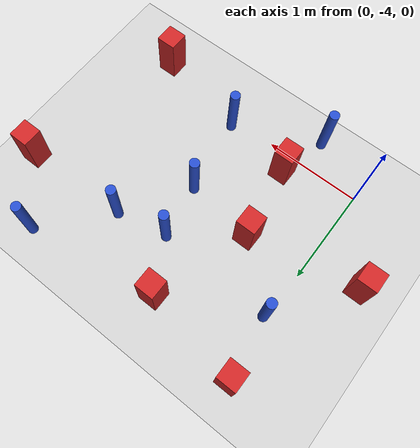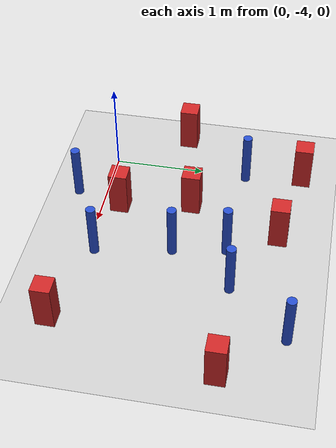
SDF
<sdf version="1.6">
 <world name="default">
  <model name="ground_plane">
   <static>1</static>
   <link name="link">
    <collision name="collision">
     <geometry><plane><normal>0 0 1</normal><size>100 100</size></plane></geometry>
     <surface><friction><ode><mu>100</mu><mu2>50</mu2></ode></friction></surface>
    </collision>
    <visual name="visual">
     <cast_shadows>0</cast_shadows>
     <geometry><plane><normal>0 0 1</normal><size>100 100</size></plane></geometry>
     <material>
      <ambient>1.0 1.0 1.0 1.0</ambient>
      <diffuse>0.8 0.8 0.8 1.0</diffuse>
      <specular>0.01 0.01 0.01 1.000000</specular>
     </material>
    </visual>
   </link>
  </model>
  <model name="pole_obstacle0">
   <static>true</static>
   <pose>1.45764528737 -3.91231881478 -9.47619616065e-06 5.49618799737e-07 2.36310414062e-07 -1.55090534798e-07</pose>
   <link name="link">
    <pose>0 0 0.3 0 -0 0</pose>
    <inertial>
     <mass>1</mass>
     <inertia><ixx>0.145833</ixx><ixy>0</ixy><ixz>0</ixz><iyy>0.145833</iyy><iyz>0</iyz><izz>0.125</izz></inertia>
    </inertial>
    <collision name="collision">
     <geometry><cylinder><radius>0.05</radius><length>.6</length></cylinder></geometry>
    </collision>
    <visual name="visual">
     <geometry><cylinder><radius>0.05</radius><length>.6</length></cylinder></geometry>
     <material>
      <script><name>Gazebo/Blue</name><uri>file://media/materials/scripts/gazebo.material</uri></script>
     </material>
    </visual>
   </link>
  </model>
  <model name="square_post_obstacle4">
   <static>true</static>
   <pose>-0.513113206835 -3.23635773973 -6.11067671241e-07 -5.50515727128e-06 -8.79689657224e-07 2.37013304536e-05</pose>
   <link name="link">
    <pose>0 0 0.25 0 -0 0</pose>
    <inertial>
     <mass>100</mass>
     <inertia>
      <ixx>0.166667</ixx>
      <ixy>0</ixy>
      <ixz>0</ixz>
      <iyy>0.166667</iyy>
      <iyz>0</iyz>
      <izz>0.166667</izz>
     </inertia>
    </inertial>
    <collision name="collision"><geometry><box><size>.2 .2 .5</size></box></geometry></collision>
    <visual name="visual">
     <geometry><box><size>.2 .2 .5</size></box></geometry>
     <material>
      <script><name>Gazebo/Red</name><uri>file://media/materials/scripts/gazebo.material</uri></script>
     </material>
    </visual>
   </link>
  </model>
  <model name="pole_obstacle8">
   <static>true</static>
   <pose>0.036647531542 -2.49097002467 -9.4761961606e-06 5.49618799729e-07 2.36310413998e-07 -1.55090534825e-07</pose>
   <link name="link">
    <pose>0 0 0.3 0 -0 0</pose>
    <inertial>
     <mass>1</mass>
     <inertia><ixx>0.145833</ixx><ixy>0</ixy><ixz>0</ixz><iyy>0.145833</iyy><iyz>0</iyz><izz>0.125</izz></inertia>
    </inertial>
    <collision name="collision">
     <geometry><cylinder><radius>0.05</radius><length>.6</length></cylinder></geometry>
    </collision>
    <visual name="visual">
     <geometry><cylinder><radius>0.05</radius><length>.6</length></cylinder></geometry>
     <material>
      <script><name>Gazebo/Blue</name><uri>file://media/materials/scripts/gazebo.material</uri></script>
     </material>
    </visual>
   </link>
  </model>
  <model name="square_post_obstacle7">
   <static>true</static>
   <pose>-0.0492457941668 -1.85533432549 -6.11067671241e-07 -5.50515727128e-06 -8.79689657224e-07 2.37013304536e-05</pose>
   <link name="link">
    <pose>0 0 0.25 0 -0 0</pose>
    <inertial>
     <mass>100</mass>
     <inertia>
      <ixx>0.166667</ixx>
      <ixy>0</ixy>
      <ixz>0</ixz>
      <iyy>0.166667</iyy>
      <iyz>0</iyz>
      <izz>0.166667</izz>
     </inertia>
    </inertial>
    <collision name="collision"><geometry><box><size>.2 .2 .5</size></box></geometry></collision>
    <visual name="visual">
     <geometry><box><size>.2 .2 .5</size></box></geometry>
     <material>
      <script><name>Gazebo/Red</name><uri>file://media/materials/scripts/gazebo.material</uri></script>
     </material>
    </visual>
   </link>
  </model>
  <model name="square_post_obstacle32">
   <static>true</static>
   <pose>0.944334524365 -2.0193535119 -6.11067671241e-07 -5.50515727128e-06 -8.79689657224e-07 2.37013304536e-05</pose>
   <link name="link">
    <pose>0 0 0.25 0 -0 0</pose>
    <inertial>
     <mass>100</mass>
     <inertia>
      <ixx>0.166667</ixx>
      <ixy>0</ixy>
      <ixz>0</ixz>
      <iyy>0.166667</iyy>
      <iyz>0</iyz>
      <izz>0.166667</izz>
     </inertia>
    </inertial>
    <collision name="collision"><geometry><box><size>.2 .2 .5</size></box></geometry></collision>
    <visual name="visual">
     <geometry><box><size>.2 .2 .5</size></box></geometry>
     <material>
      <script><name>Gazebo/Red</name><uri>file://media/materials/scripts/gazebo.material</uri></script>
     </material>
    </visual>
   </link>
  </model>
  <model name="pole_obstacle49">
   <static>true</static>
   <pose>1.22181753128 -2.53847772462 -9.47619616065e-06 5.49618799737e-07 2.36310414062e-07 -1.55090534798e-07</pose>
   <link name="link">
    <pose>0 0 0.3 0 -0 0</pose>
    <inertial>
     <mass>1</mass>
     <inertia><ixx>0.145833</ixx><ixy>0</ixy><ixz>0</ixz><iyy>0.145833</iyy><iyz>0</iyz><izz>0.125</izz></inertia>
    </inertial>
    <collision name="collision">
     <geometry><cylinder><radius>0.05</radius><length>.6</length></cylinder></geometry>
    </collision>
    <visual name="visual">
     <geometry><cylinder><radius>0.05</radius><length>.6</length></cylinder></geometry>
     <material>
      <script><name>Gazebo/Blue</name><uri>file://media/materials/scripts/gazebo.material</uri></script>
     </material>
    </visual>
   </link>
  </model>
  <model name="square_post_obstacle45">
   <static>true</static>
   <pose>0.733690018151 -3.7953399862 -6.11067671241e-07 -5.50515727128e-06 -8.79689657224e-07 2.37013304536e-05</pose>
   <link name="link">
    <pose>0 0 0.25 0 -0 0</pose>
    <inertial>
     <mass>100</mass>
     <inertia>
      <ixx>0.166667</ixx>
      <ixy>0</ixy>
      <ixz>0</ixz>
      <iyy>0.166667</iyy>
      <iyz>0</iyz>
      <izz>0.166667</izz>
     </inertia>
    </inertial>
    <collision name="collision"><geometry><box><size>.2 .2 .5</size></box></geometry></collision>
    <visual name="visual">
     <geometry><box><size>.2 .2 .5</size></box></geometry>
     <material>
      <script><name>Gazebo/Red</name><uri>file://media/materials/scripts/gazebo.material</uri></script>
     </material>
    </visual>
   </link>
  </model>
  <model name="pole_obstacle83">
   <static>true</static>
   <pose>2.29108792412 -1.79447740261 -9.47619616065e-06 5.49618799737e-07 2.36310414072e-07 -1.55090534793e-07</pose>
   <link name="link">
    <pose>0 0 0.3 0 -0 0</pose>
    <inertial>
     <mass>1</mass>
     <inertia><ixx>0.145833</ixx><ixy>0</ixy><ixz>0</ixz><iyy>0.145833</iyy><iyz>0</iyz><izz>0.125</izz></inertia>
    </inertial>
    <collision name="collision">
     <geometry><cylinder><radius>0.05</radius><length>.6</length></cylinder></geometry>
    </collision>
    <visual name="visual">
     <geometry><cylinder><radius>0.05</radius><length>.6</length></cylinder></geometry>
     <material>
      <script><name>Gazebo/Blue</name><uri>file://media/materials/scripts/gazebo.material</uri></script>
     </material>
    </visual>
   </link>
  </model>
  <model name="pole_obstacle108">
   <static>true</static>
   <pose>1.32068198017 -3.10183576846 -9.47619616065e-06 5.49618799737e-07 2.36310414062e-07 -1.55090534798e-07</pose>
   <link name="link">
    <pose>0 0 0.3 0 -0 0</pose>
    <inertial>
     <mass>1</mass>
     <inertia><ixx>0.145833</ixx><ixy>0</ixy><ixz>0</ixz><iyy>0.145833</iyy><iyz>0</iyz><izz>0.125</izz></inertia>
    </inertial>
    <collision name="collision">
     <geometry><cylinder><radius>0.05</radius><length>.6</length></cylinder></geometry>
    </collision>
    <visual name="visual">
     <geometry><cylinder><radius>0.05</radius><length>.6</length></cylinder></geometry>
     <material>
      <script><name>Gazebo/Blue</name><uri>file://media/materials/scripts/gazebo.material</uri></script>
     </material>
    </visual>
   </link>
  </model>
  <model name="pole_obstacle126">
   <static>true</static>
   <pose>0.591665066067 -4.31535992664 -9.47619616065e-06 5.49618799737e-07 2.36310414065e-07 -1.55090534796e-07</pose>
   <link name="link">
    <pose>0 0 0.3 0 -0 0</pose>
    <inertial>
     <mass>1</mass>
     <inertia><ixx>0.145833</ixx><ixy>0</ixy><ixz>0</ixz><iyy>0.145833</iyy><iyz>0</iyz><izz>0.125</izz></inertia>
    </inertial>
    <collision name="collision">
     <geometry><cylinder><radius>0.05</radius><length>.6</length></cylinder></geometry>
    </collision>
    <visual name="visual">
     <geometry><cylinder><radius>0.05</radius><length>.6</length></cylinder></geometry>
     <material>
      <script><name>Gazebo/Blue</name><uri>file://media/materials/scripts/gazebo.material</uri></script>
     </material>
    </visual>
   </link>
  </model>
  <model name="square_post_obstacle142">
   <static>true</static>
   <pose>0.606535032504 -3.0171237286 -6.11067671241e-07 -5.50515727128e-06 -8.79689657224e-07 2.37013304536e-05</pose>
   <link name="link">
    <pose>0 0 0.25 0 -0 0</pose>
    <inertial>
     <mass>100</mass>
     <inertia>
      <ixx>0.166667</ixx>
      <ixy>0</ixy>
      <ixz>0</ixz>
      <iyy>0.166667</iyy>
      <iyz>0</iyz>
      <izz>0.166667</izz>
     </inertia>
    </inertial>
    <collision name="collision"><geometry><box><size>.2 .2 .5</size></box></geometry></collision>
    <visual name="visual">
     <geometry><box><size>.2 .2 .5</size></box></geometry>
     <material>
      <script><name>Gazebo/Red</name><uri>file://media/materials/scripts/gazebo.material</uri></script>
     </material>
    </visual>
   </link>
  </model>
  <model name="pole_obstacle179">
   <static>true</static>
   <pose>1.74304431504 -2.42977251697 -9.47619616065e-06 5.49618799737e-07 2.36310414062e-07 -1.55090534798e-07</pose>
   <link name="link">
    <pose>0 0 0.3 0 -0 0</pose>
    <inertial>
     <mass>1</mass>
     <inertia><ixx>0.145833</ixx><ixy>0</ixy><ixz>0</ixz><iyy>0.145833</iyy><iyz>0</iyz><izz>0.125</izz></inertia>
    </inertial>
    <collision name="collision">
     <geometry><cylinder><radius>0.05</radius><length>.6</length></cylinder></geometry>
    </collision>
    <visual name="visual">
     <geometry><cylinder><radius>0.05</radius><length>.6</length></cylinder></geometry>
     <material>
      <script><name>Gazebo/Blue</name><uri>file://media/materials/scripts/gazebo.material</uri></script>
     </material>
    </visual>
   </link>
  </model>
  <model name="square_post_obstacle177">
   <static>true</static>
   <pose>2.42569512224 -4.12944971251 -6.11067671241e-07 -5.50515727128e-06 -8.79689657224e-07 2.37013304536e-05</pose>
   <link name="link">
    <pose>0 0 0.25 0 -0 0</pose>
    <inertial>
     <mass>100</mass>
     <inertia>
      <ixx>0.166667</ixx>
      <ixy>0</ixy>
      <ixz>0</ixz>
      <iyy>0.166667</iyy>
      <iyz>0</iyz>
      <izz>0.166667</izz>
     </inertia>
    </inertial>
    <collision name="collision"><geometry><box><size>.2 .2 .5</size></box></geometry></collision>
    <visual name="visual">
     <geometry><box><size>.2 .2 .5</size></box></geometry>
     <material>
      <script><name>Gazebo/Red</name><uri>file://media/materials/scripts/gazebo.material</uri></script>
     </material>
    </visual>
   </link>
  </model>
  <model name="square_post_obstacle230">
   <static>true</static>
   <pose>2.81615500526 -2.39496275745 -6.11067671241e-07 -5.50515727128e-06 -8.79689657224e-07 2.37013304536e-05</pose>
   <link name="link">
    <pose>0 0 0.25 0 -0 0</pose>
    <inertial>
     <mass>100</mass>
     <inertia>
      <ixx>0.166667</ixx>
      <ixy>0</ixy>
      <ixz>0</ixz>
      <iyy>0.166667</iyy>
      <iyz>0</iyz>
      <izz>0.166667</izz>
     </inertia>
    </inertial>
    <collision name="collision"><geometry><box><size>.2 .2 .5</size></box></geometry></collision>
    <visual name="visual">
     <geometry><box><size>.2 .2 .5</size></box></geometry>
     <material>
      <script><name>Gazebo/Red</name><uri>file://media/materials/scripts/gazebo.material</uri></script>
     </material>
    </visual>
   </link>
  </model>
 </world>
</sdf>
